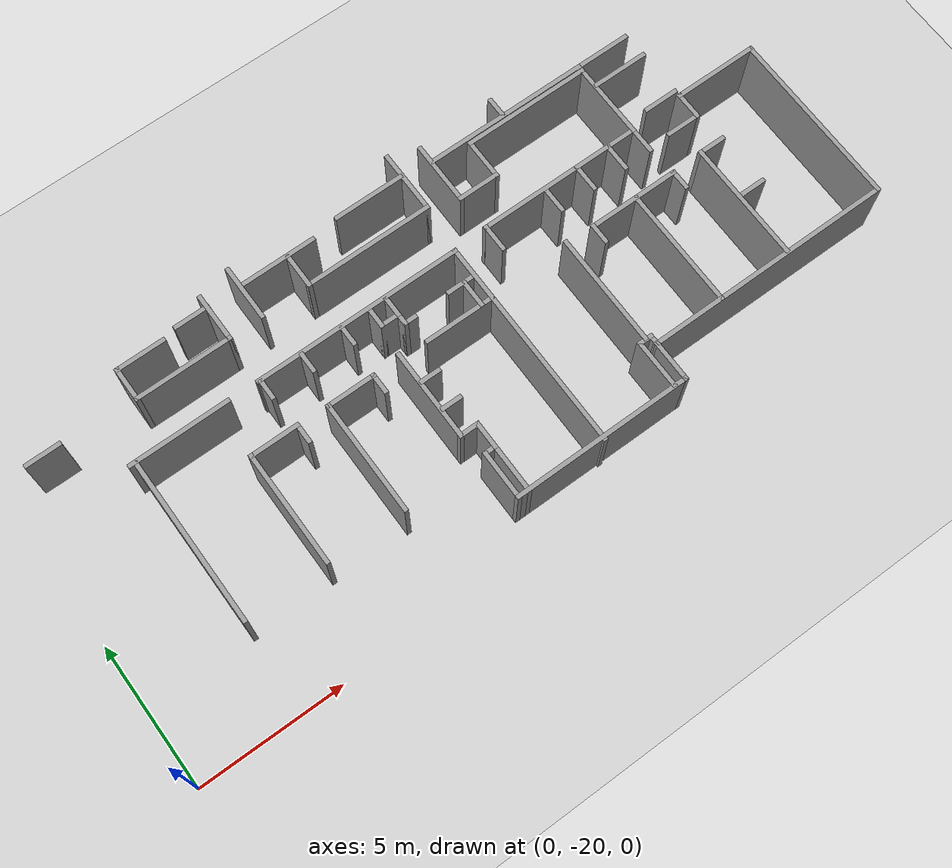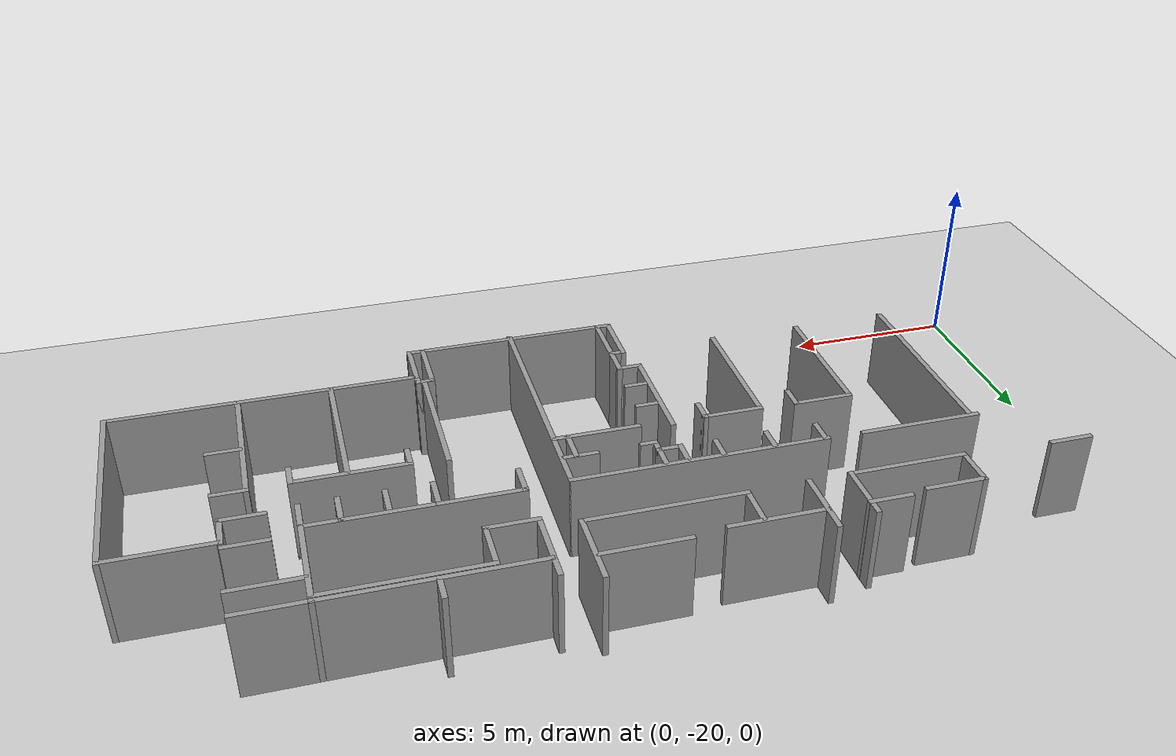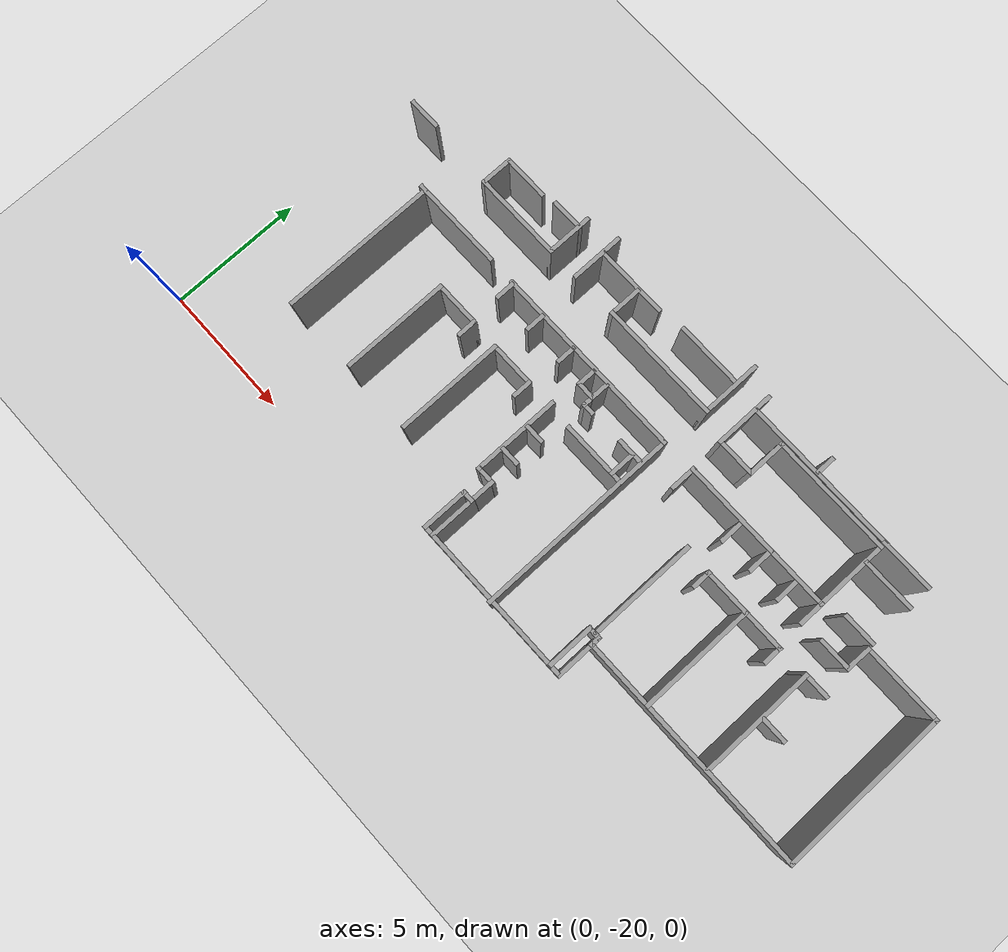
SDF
<sdf version="1.6">
 <world name="default">
  <model name="ground_plane">
   <static>1</static>
   <link name="link">
    <collision name="collision">
     <geometry><plane><normal>0 0 1</normal><size>100 100</size></plane></geometry>
     <surface>
      <contact><collide_bitmask>65535</collide_bitmask></contact>
      <friction><ode><mu>100</mu><mu2>50</mu2></ode></friction>
     </surface>
    </collision>
    <visual name="visual">
     <cast_shadows>0</cast_shadows>
     <geometry><plane><normal>0 0 1</normal><size>100 100</size></plane></geometry>
     <material>
      <script><uri>file://media/materials/scripts/gazebo.material</uri><name>Gazebo/Grey</name></script>
     </material>
    </visual>
   </link>
  </model>
  <model name="harnwell">
   <pose>0.907995 -0.1981 0 0 -0 0</pose>
   <link name="Wall_163">
    <collision name="Wall_163_Collision">
     <geometry><box><size>1.75 0.15 2.5</size></box></geometry>
     <pose>0 0 1.25 0 -0 0</pose>
    </collision>
    <visual name="Wall_163_Visual">
     <pose>0 0 1.25 0 -0 0</pose>
     <geometry><box><size>1.75 0.15 2.5</size></box></geometry>
     <material>
      <script><uri>file://media/materials/scripts/gazebo.material</uri><name>Gazebo/Grey</name></script>
      <ambient>1 1 1 1</ambient>
     </material>
     <meta><layer>0</layer></meta>
    </visual>
    <pose>4.64354 -8.7592 0 0 -0 3.14159</pose>
   </link>
   <link name="Wall_165">
    <collision name="Wall_165_Collision">
     <geometry><box><size>1.25 0.15 2.5</size></box></geometry>
     <pose>0 0 1.25 0 -0 0</pose>
    </collision>
    <visual name="Wall_165_Visual">
     <pose>0 0 1.25 0 -0 0</pose>
     <geometry><box><size>1.25 0.15 2.5</size></box></geometry>
     <material>
      <script><uri>file://media/materials/scripts/gazebo.material</uri><name>Gazebo/Grey</name></script>
      <ambient>1 1 1 1</ambient>
     </material>
     <meta><layer>0</layer></meta>
    </visual>
    <pose>3.84377 -9.30906 0 0 -0 -1.57037</pose>
   </link>
   <link name="Wall_166">
    <collision name="Wall_166_Collision">
     <geometry><box><size>3.3708 0.15 2.5</size></box></geometry>
     <pose>0 0 1.25 0 -0 0</pose>
    </collision>
    <visual name="Wall_166_Visual">
     <pose>0 0 1.25 0 -0 0</pose>
     <geometry><box><size>3.3708 0.15 2.5</size></box></geometry>
     <material>
      <script><uri>file://media/materials/scripts/gazebo.material</uri><name>Gazebo/Grey</name></script>
      <ambient>1 1 1 1</ambient>
     </material>
     <meta><layer>0</layer></meta>
    </visual>
    <pose>5.45451 -9.85893 0 0 -0 0</pose>
   </link>
   <link name="Wall_169">
    <collision name="Wall_169_Collision">
     <geometry><box><size>1.75 0.15 2.5</size></box></geometry>
     <pose>0 0 1.25 0 -0 0</pose>
    </collision>
    <visual name="Wall_169_Visual">
     <pose>0 0 1.25 0 -0 0</pose>
     <geometry><box><size>1.75 0.15 2.5</size></box></geometry>
     <material>
      <script><uri>file://media/materials/scripts/gazebo.material</uri><name>Gazebo/Grey</name></script>
      <ambient>1 1 1 1</ambient>
     </material>
     <meta><layer>0</layer></meta>
    </visual>
    <pose>7.06501 -9.05893 0 0 -0 1.5708</pose>
   </link>
   <link name="Wall_176">
    <collision name="Wall_176_Collision">
     <geometry><box><size>1.25 0.15 2.5</size></box></geometry>
     <pose>0 0 1.25 0 -0 0</pose>
    </collision>
    <visual name="Wall_176_Visual">
     <pose>0 0 1.25 0 -0 0</pose>
     <geometry><box><size>1.25 0.15 2.5</size></box></geometry>
     <material>
      <script><uri>file://media/materials/scripts/gazebo.material</uri><name>Gazebo/Grey</name></script>
      <ambient>1 1 1 1</ambient>
     </material>
     <meta><layer>0</layer></meta>
    </visual>
    <pose>6.52251 -8.63324 0 0 -0 0</pose>
   </link>
   <link name="Wall_221">
    <collision name="Wall_221_Collision">
     <geometry><box><size>3.01097 0.15 2.5</size></box></geometry>
     <pose>0 0 1.25 0 -0 0</pose>
    </collision>
    <visual name="Wall_221_Visual">
     <pose>0 0 1.25 0 -0 0</pose>
     <geometry><box><size>3.01097 0.15 2.5</size></box></geometry>
     <material>
      <script><uri>file://media/materials/scripts/gazebo.material</uri><name>Gazebo/Grey</name></script>
      <ambient>1 1 1 1</ambient>
     </material>
     <meta><layer>0</layer></meta>
    </visual>
    <pose>24.3195 -11.3298 0 0 -0 0.000107</pose>
   </link>
   <link name="Wall_223">
    <collision name="Wall_223_Collision">
     <geometry><box><size>6.25 0.15 2.5</size></box></geometry>
     <pose>0 0 1.25 0 -0 0</pose>
    </collision>
    <visual name="Wall_223_Visual">
     <pose>0 0 1.25 0 -0 0</pose>
     <geometry><box><size>6.25 0.15 2.5</size></box></geometry>
     <material>
      <script><uri>file://media/materials/scripts/gazebo.material</uri><name>Gazebo/Grey</name></script>
      <ambient>1 1 1 1</ambient>
     </material>
     <meta><layer>0</layer></meta>
    </visual>
    <pose>25.75 -14.3796 0 0 -0 -1.5708</pose>
   </link>
   <link name="Wall_224">
    <collision name="Wall_224_Collision">
     <geometry><box><size>8.75 0.15 2.5</size></box></geometry>
     <pose>0 0 1.25 0 -0 0</pose>
    </collision>
    <visual name="Wall_224_Visual">
     <pose>0 0 1.25 0 -0 0</pose>
     <geometry><box><size>8.75 0.15 2.5</size></box></geometry>
     <material>
      <script><uri>file://media/materials/scripts/gazebo.material</uri><name>Gazebo/Grey</name></script>
      <ambient>1 1 1 1</ambient>
     </material>
     <meta><layer>0</layer></meta>
    </visual>
    <pose>21.45 -17.4298 0 0 -0 -3.14156</pose>
   </link>
   <link name="Wall_225">
    <collision name="Wall_225_Collision">
     <geometry><box><size>1.5 0.15 2.5</size></box></geometry>
     <pose>0 0 1.25 0 -0 0</pose>
    </collision>
    <visual name="Wall_225_Visual">
     <pose>0 0 1.25 0 -0 0</pose>
     <geometry><box><size>1.5 0.15 2.5</size></box></geometry>
     <material>
      <script><uri>file://media/materials/scripts/gazebo.material</uri><name>Gazebo/Grey</name></script>
      <ambient>1 1 1 1</ambient>
     </material>
     <meta><layer>0</layer></meta>
    </visual>
    <pose>17.15 -18.1048 0 0 -0 -1.57082</pose>
   </link>
   <link name="Wall_226">
    <collision name="Wall_226_Collision">
     <geometry><box><size>6.25 0.15 2.5</size></box></geometry>
     <pose>0 0 1.25 0 -0 0</pose>
    </collision>
    <visual name="Wall_226_Visual">
     <pose>0 0 1.25 0 -0 0</pose>
     <geometry><box><size>6.25 0.15 2.5</size></box></geometry>
     <material>
      <script><uri>file://media/materials/scripts/gazebo.material</uri><name>Gazebo/Grey</name></script>
      <ambient>1 1 1 1</ambient>
     </material>
     <meta><layer>0</layer></meta>
    </visual>
    <pose>14.1 -18.7796 0 0 -0 3.14159</pose>
   </link>
   <link name="Wall_227">
    <collision name="Wall_227_Collision">
     <geometry><box><size>1.75 0.15 2.5</size></box></geometry>
     <pose>0 0 1.25 0 -0 0</pose>
    </collision>
    <visual name="Wall_227_Visual">
     <pose>0 0 1.25 0 -0 0</pose>
     <geometry><box><size>1.75 0.15 2.5</size></box></geometry>
     <material>
      <script><uri>file://media/materials/scripts/gazebo.material</uri><name>Gazebo/Grey</name></script>
      <ambient>1 1 1 1</ambient>
     </material>
     <meta><layer>0</layer></meta>
    </visual>
    <pose>11.05 -17.9796 0 0 -0 1.5708</pose>
   </link>
   <link name="Wall_252">
    <collision name="Wall_252_Collision">
     <geometry><box><size>1.25 0.15 2.5</size></box></geometry>
     <pose>0 0 1.25 0 -0 0</pose>
    </collision>
    <visual name="Wall_252_Visual">
     <pose>0 0 1.25 0 -0 0</pose>
     <geometry><box><size>1.25 0.15 2.5</size></box></geometry>
     <material>
      <script><uri>file://media/materials/scripts/gazebo.material</uri><name>Gazebo/Grey</name></script>
      <ambient>1 1 1 1</ambient>
     </material>
     <meta><layer>0</layer></meta>
    </visual>
    <pose>0.737992 -9.71494 0 0 -0 0</pose>
   </link>
   <link name="Wall_416">
    <collision name="Wall_416_Collision">
     <geometry><box><size>3.5 0.15 2.5</size></box></geometry>
     <pose>0 0 1.25 0 -0 0</pose>
    </collision>
    <visual name="Wall_416_Visual">
     <pose>0 0 1.25 0 -0 0</pose>
     <geometry><box><size>3.5 0.15 2.5</size></box></geometry>
     <material>
      <script><uri>file://media/materials/scripts/gazebo.material</uri><name>Gazebo/Grey</name></script>
      <ambient>1 1 1 1</ambient>
     </material>
     <meta><layer>0</layer></meta>
    </visual>
    <pose>4.27018 -11.4734 0 0 -0 0</pose>
   </link>
   <link name="Wall_419">
    <collision name="Wall_419_Collision">
     <geometry><box><size>5.78703 0.15 2.5</size></box></geometry>
     <pose>0 0 1.25 0 -0 0</pose>
    </collision>
    <visual name="Wall_419_Visual">
     <pose>0 0 1.25 0 -0 0</pose>
     <geometry><box><size>5.78703 0.15 2.5</size></box></geometry>
     <material>
      <script><uri>file://media/materials/scripts/gazebo.material</uri><name>Gazebo/Grey</name></script>
      <ambient>1 1 1 1</ambient>
     </material>
     <meta><layer>0</layer></meta>
    </visual>
    <pose>2.76701 -14.3394 0 0 -0 1.5708</pose>
   </link>
   <link name="Wall_462">
    <collision name="Wall_462_Collision">
     <geometry><box><size>7.25 0.15 2.5</size></box></geometry>
     <pose>0 0 1.25 0 -0 0</pose>
    </collision>
    <visual name="Wall_462_Visual">
     <pose>0 0 1.25 0 -0 0</pose>
     <geometry><box><size>7.25 0.15 2.5</size></box></geometry>
     <material>
      <script><uri>file://media/materials/scripts/gazebo.material</uri><name>Gazebo/Grey</name></script>
      <ambient>1 1 1 1</ambient>
     </material>
     <meta><layer>0</layer></meta>
    </visual>
    <pose>10.5509 -11.4972 0 0 -0 0</pose>
   </link>
   <link name="Wall_464">
    <collision name="Wall_464_Collision">
     <geometry><box><size>7.5 0.15 2.5</size></box></geometry>
     <pose>0 0 1.25 0 -0 0</pose>
    </collision>
    <visual name="Wall_464_Visual">
     <pose>0 0 1.25 0 -0 0</pose>
     <geometry><box><size>7.5 0.15 2.5</size></box></geometry>
     <material>
      <script><uri>file://media/materials/scripts/gazebo.material</uri><name>Gazebo/Grey</name></script>
      <ambient>1 1 1 1</ambient>
     </material>
     <meta><layer>0</layer></meta>
    </visual>
    <pose>14.1009 -15.1722 0 0 -0 -1.5708</pose>
   </link>
   <link name="Wall_466">
    <collision name="Wall_466_Collision">
     <geometry><box><size>0.5 0.15 2.5</size></box></geometry>
     <pose>0 0 1.25 0 -0 0</pose>
    </collision>
    <visual name="Wall_466_Visual">
     <pose>0 0 1.25 0 -0 0</pose>
     <geometry><box><size>0.5 0.15 2.5</size></box></geometry>
     <material>
      <script><uri>file://media/materials/scripts/gazebo.material</uri><name>Gazebo/Grey</name></script>
      <ambient>1 1 1 1</ambient>
     </material>
     <meta><layer>0</layer></meta>
    </visual>
    <pose>11.225 -17.1796 0 0 -0 0</pose>
   </link>
   <link name="Wall_468">
    <collision name="Wall_468_Collision">
     <geometry><box><size>1.75 0.15 2.5</size></box></geometry>
     <pose>0 0 1.25 0 -0 0</pose>
    </collision>
    <visual name="Wall_468_Visual">
     <pose>0 0 1.25 0 -0 0</pose>
     <geometry><box><size>1.75 0.15 2.5</size></box></geometry>
     <material>
      <script><uri>file://media/materials/scripts/gazebo.material</uri><name>Gazebo/Grey</name></script>
      <ambient>1 1 1 1</ambient>
     </material>
     <meta><layer>0</layer></meta>
    </visual>
    <pose>11.4 -17.9796 0 0 -0 -1.5708</pose>
   </link>
   <link name="Wall_470">
    <collision name="Wall_470_Collision">
     <geometry><box><size>1 0.15 2.5</size></box></geometry>
     <pose>0 0 1.25 0 -0 0</pose>
    </collision>
    <visual name="Wall_470_Visual">
     <pose>0 0 1.25 0 -0 0</pose>
     <geometry><box><size>1 0.15 2.5</size></box></geometry>
     <material>
      <script><uri>file://media/materials/scripts/gazebo.material</uri><name>Gazebo/Grey</name></script>
      <ambient>1 1 1 1</ambient>
     </material>
     <meta><layer>0</layer></meta>
    </visual>
    <pose>11.4 -16.7546 0 0 -0 1.5708</pose>
   </link>
   <link name="Wall_471">
    <collision name="Wall_471_Collision">
     <geometry><box><size>0.75 0.15 2.5</size></box></geometry>
     <pose>0 0 1.25 0 -0 0</pose>
    </collision>
    <visual name="Wall_471_Visual">
     <pose>0 0 1.25 0 -0 0</pose>
     <geometry><box><size>0.75 0.15 2.5</size></box></geometry>
     <material>
      <script><uri>file://media/materials/scripts/gazebo.material</uri><name>Gazebo/Grey</name></script>
      <ambient>1 1 1 1</ambient>
     </material>
     <meta><layer>0</layer></meta>
    </visual>
    <pose>11.1 -16.3296 0 0 -0 3.14159</pose>
   </link>
   <link name="Wall_473">
    <collision name="Wall_473_Collision">
     <geometry><box><size>3.25 0.15 2.5</size></box></geometry>
     <pose>0 0 1.25 0 -0 0</pose>
    </collision>
    <visual name="Wall_473_Visual">
     <pose>0 0 1.25 0 -0 0</pose>
     <geometry><box><size>3.25 0.15 2.5</size></box></geometry>
     <material>
      <script><uri>file://media/materials/scripts/gazebo.material</uri><name>Gazebo/Grey</name></script>
      <ambient>1 1 1 1</ambient>
     </material>
     <meta><layer>0</layer></meta>
    </visual>
    <pose>10.8 -14.7796 0 0 -0 1.5708</pose>
   </link>
   <link name="Wall_475">
    <collision name="Wall_475_Collision">
     <geometry><box><size>2.5 0.15 2.5</size></box></geometry>
     <pose>0 0 1.25 0 -0 0</pose>
    </collision>
    <visual name="Wall_475_Visual">
     <pose>0 0 1.25 0 -0 0</pose>
     <geometry><box><size>2.5 0.15 2.5</size></box></geometry>
     <material>
      <script><uri>file://media/materials/scripts/gazebo.material</uri><name>Gazebo/Grey</name></script>
      <ambient>1 1 1 1</ambient>
     </material>
     <meta><layer>0</layer></meta>
    </visual>
    <pose>12.9077 -13.3825 0 0 -0 0</pose>
   </link>
   <link name="Wall_477">
    <collision name="Wall_477_Collision">
     <geometry><box><size>0.75 0.15 2.5</size></box></geometry>
     <pose>0 0 1.25 0 -0 0</pose>
    </collision>
    <visual name="Wall_477_Visual">
     <pose>0 0 1.25 0 -0 0</pose>
     <geometry><box><size>0.75 0.15 2.5</size></box></geometry>
     <material>
      <script><uri>file://media/materials/scripts/gazebo.material</uri><name>Gazebo/Grey</name></script>
      <ambient>1 1 1 1</ambient>
     </material>
     <meta><layer>0</layer></meta>
    </visual>
    <pose>11.1515 -14.318 0 0 -0 0</pose>
   </link>
   <link name="Wall_479">
    <collision name="Wall_479_Collision">
     <geometry><box><size>0.75 0.15 2.5</size></box></geometry>
     <pose>0 0 1.25 0 -0 0</pose>
    </collision>
    <visual name="Wall_479_Visual">
     <pose>0 0 1.25 0 -0 0</pose>
     <geometry><box><size>0.75 0.15 2.5</size></box></geometry>
     <material>
      <script><uri>file://media/materials/scripts/gazebo.material</uri><name>Gazebo/Grey</name></script>
      <ambient>1 1 1 1</ambient>
     </material>
     <meta><layer>0</layer></meta>
    </visual>
    <pose>11.1636 -15.3621 0 0 -0 0</pose>
   </link>
   <link name="Wall_481">
    <collision name="Wall_481_Collision">
     <geometry><box><size>0.747561 0.15 2.5</size></box></geometry>
     <pose>0 0 1.25 0 -0 0</pose>
    </collision>
    <visual name="Wall_481_Visual">
     <pose>0 0 1.25 0 -0 0</pose>
     <geometry><box><size>0.747561 0.15 2.5</size></box></geometry>
     <material>
      <script><uri>file://media/materials/scripts/gazebo.material</uri><name>Gazebo/Grey</name></script>
      <ambient>1 1 1 1</ambient>
     </material>
     <meta><layer>0</layer></meta>
    </visual>
    <pose>7.05899 -11.85 0 0 -0 1.5708</pose>
   </link>
   <link name="Wall_485">
    <collision name="Wall_485_Collision">
     <geometry><box><size>0.75 0.15 2.5</size></box></geometry>
     <pose>0 0 1.25 0 -0 0</pose>
    </collision>
    <visual name="Wall_485_Visual">
     <pose>0 0 1.25 0 -0 0</pose>
     <geometry><box><size>0.75 0.15 2.5</size></box></geometry>
     <material>
      <script><uri>file://media/materials/scripts/gazebo.material</uri><name>Gazebo/Grey</name></script>
      <ambient>1 1 1 1</ambient>
     </material>
     <meta><layer>0</layer></meta>
    </visual>
    <pose>8.49576 -11.8554 0 0 -0 1.5708</pose>
   </link>
   <link name="Wall_487">
    <collision name="Wall_487_Collision">
     <geometry><box><size>0.75 0.15 2.5</size></box></geometry>
     <pose>0 0 1.25 0 -0 0</pose>
    </collision>
    <visual name="Wall_487_Visual">
     <pose>0 0 1.25 0 -0 0</pose>
     <geometry><box><size>0.75 0.15 2.5</size></box></geometry>
     <material>
      <script><uri>file://media/materials/scripts/gazebo.material</uri><name>Gazebo/Grey</name></script>
      <ambient>1 1 1 1</ambient>
     </material>
     <meta><layer>0</layer></meta>
    </visual>
    <pose>9.93946 -11.8554 0 0 -0 1.5708</pose>
   </link>
   <link name="Wall_489">
    <collision name="Wall_489_Collision">
     <geometry><box><size>0.75 0.15 2.5</size></box></geometry>
     <pose>0 0 1.25 0 -0 0</pose>
    </collision>
    <visual name="Wall_489_Visual">
     <pose>0 0 1.25 0 -0 0</pose>
     <geometry><box><size>0.75 0.15 2.5</size></box></geometry>
     <material>
      <script><uri>file://media/materials/scripts/gazebo.material</uri><name>Gazebo/Grey</name></script>
      <ambient>1 1 1 1</ambient>
     </material>
     <meta><layer>0</layer></meta>
    </visual>
    <pose>10.9251 -11.8793 0 0 -0 -1.5708</pose>
   </link>
   <link name="Wall_490">
    <collision name="Wall_490_Collision">
     <geometry><box><size>0.75 0.15 2.5</size></box></geometry>
     <pose>0 0 1.25 0 -0 0</pose>
    </collision>
    <visual name="Wall_490_Visual">
     <pose>0 0 1.25 0 -0 0</pose>
     <geometry><box><size>0.75 0.15 2.5</size></box></geometry>
     <material>
      <script><uri>file://media/materials/scripts/gazebo.material</uri><name>Gazebo/Grey</name></script>
      <ambient>1 1 1 1</ambient>
     </material>
     <meta><layer>0</layer></meta>
    </visual>
    <pose>11.2251 -12.1793 0 0 -0 0</pose>
   </link>
   <link name="Wall_491">
    <collision name="Wall_491_Collision">
     <geometry><box><size>0.75 0.15 2.5</size></box></geometry>
     <pose>0 0 1.25 0 -0 0</pose>
    </collision>
    <visual name="Wall_491_Visual">
     <pose>0 0 1.25 0 -0 0</pose>
     <geometry><box><size>0.75 0.15 2.5</size></box></geometry>
     <material>
      <script><uri>file://media/materials/scripts/gazebo.material</uri><name>Gazebo/Grey</name></script>
      <ambient>1 1 1 1</ambient>
     </material>
     <meta><layer>0</layer></meta>
    </visual>
    <pose>11.5251 -11.8793 0 0 -0 1.5708</pose>
   </link>
   <link name="Wall_493">
    <collision name="Wall_493_Collision">
     <geometry><box><size>0.5 0.15 2.5</size></box></geometry>
     <pose>0 0 1.25 0 -0 0</pose>
    </collision>
    <visual name="Wall_493_Visual">
     <pose>0 0 1.25 0 -0 0</pose>
     <geometry><box><size>0.5 0.15 2.5</size></box></geometry>
     <material>
      <script><uri>file://media/materials/scripts/gazebo.material</uri><name>Gazebo/Grey</name></script>
      <ambient>1 1 1 1</ambient>
     </material>
     <meta><layer>0</layer></meta>
    </visual>
    <pose>11.5251 -12.3543 0 0 -0 -1.5708</pose>
   </link>
   <link name="Wall_494">
    <collision name="Wall_494_Collision">
     <geometry><box><size>0.5 0.15 2.5</size></box></geometry>
     <pose>0 0 1.25 0 -0 0</pose>
    </collision>
    <visual name="Wall_494_Visual">
     <pose>0 0 1.25 0 -0 0</pose>
     <geometry><box><size>0.5 0.15 2.5</size></box></geometry>
     <material>
      <script><uri>file://media/materials/scripts/gazebo.material</uri><name>Gazebo/Grey</name></script>
      <ambient>1 1 1 1</ambient>
     </material>
     <meta><layer>0</layer></meta>
    </visual>
    <pose>11.7001 -12.5293 0 0 -0 0</pose>
   </link>
   <link name="Wall_496">
    <collision name="Wall_496_Collision">
     <geometry><box><size>1 0.15 2.5</size></box></geometry>
     <pose>0 0 1.25 0 -0 0</pose>
    </collision>
    <visual name="Wall_496_Visual">
     <pose>0 0 1.25 0 -0 0</pose>
     <geometry><box><size>1 0.15 2.5</size></box></geometry>
     <material>
      <script><uri>file://media/materials/scripts/gazebo.material</uri><name>Gazebo/Grey</name></script>
      <ambient>1 1 1 1</ambient>
     </material>
     <meta><layer>0</layer></meta>
    </visual>
    <pose>13.585 -12.4885 0 0 -0 0</pose>
   </link>
   <link name="Wall_499">
    <collision name="Wall_499_Collision">
     <geometry><box><size>1 0.15 2.5</size></box></geometry>
     <pose>0 0 1.25 0 -0 0</pose>
    </collision>
    <visual name="Wall_499_Visual">
     <pose>0 0 1.25 0 -0 0</pose>
     <geometry><box><size>1 0.15 2.5</size></box></geometry>
     <material>
      <script><uri>file://media/materials/scripts/gazebo.material</uri><name>Gazebo/Grey</name></script>
      <ambient>1 1 1 1</ambient>
     </material>
     <meta><layer>0</layer></meta>
    </visual>
    <pose>13.7084 -12.9482 0 0 -0 -1.5708</pose>
   </link>
   <link name="Wall_501">
    <collision name="Wall_501_Collision">
     <geometry><box><size>4 0.15 2.5</size></box></geometry>
     <pose>0 0 1.25 0 -0 0</pose>
    </collision>
    <visual name="Wall_501_Visual">
     <pose>0 0 1.25 0 -0 0</pose>
     <geometry><box><size>4 0.15 2.5</size></box></geometry>
     <material>
      <script><uri>file://media/materials/scripts/gazebo.material</uri><name>Gazebo/Grey</name></script>
      <ambient>1 1 1 1</ambient>
     </material>
     <meta><layer>0</layer></meta>
    </visual>
    <pose>5.56334 -15.2087 0 0 -0 1.5708</pose>
   </link>
   <link name="Wall_502">
    <collision name="Wall_502_Collision">
     <geometry><box><size>1.75 0.15 2.5</size></box></geometry>
     <pose>0 0 1.25 0 -0 0</pose>
    </collision>
    <visual name="Wall_502_Visual">
     <pose>0 0 1.25 0 -0 0</pose>
     <geometry><box><size>1.75 0.15 2.5</size></box></geometry>
     <material>
      <script><uri>file://media/materials/scripts/gazebo.material</uri><name>Gazebo/Grey</name></script>
      <ambient>1 1 1 1</ambient>
     </material>
     <meta><layer>0</layer></meta>
    </visual>
    <pose>6.36334 -13.2837 0 0 -0 0</pose>
   </link>
   <link name="Wall_503">
    <collision name="Wall_503_Collision">
     <geometry><box><size>0.75 0.15 2.5</size></box></geometry>
     <pose>0 0 1.25 0 -0 0</pose>
    </collision>
    <visual name="Wall_503_Visual">
     <pose>0 0 1.25 0 -0 0</pose>
     <geometry><box><size>0.75 0.15 2.5</size></box></geometry>
     <material>
      <script><uri>file://media/materials/scripts/gazebo.material</uri><name>Gazebo/Grey</name></script>
      <ambient>1 1 1 1</ambient>
     </material>
     <meta><layer>0</layer></meta>
    </visual>
    <pose>7.16334 -13.5837 0 0 -0 -1.5708</pose>
   </link>
   <link name="Wall_505">
    <collision name="Wall_505_Collision">
     <geometry><box><size>4 0.15 2.5</size></box></geometry>
     <pose>0 0 1.25 0 -0 0</pose>
    </collision>
    <visual name="Wall_505_Visual">
     <pose>0 0 1.25 0 -0 0</pose>
     <geometry><box><size>4 0.15 2.5</size></box></geometry>
     <material>
      <script><uri>file://media/materials/scripts/gazebo.material</uri><name>Gazebo/Grey</name></script>
      <ambient>1 1 1 1</ambient>
     </material>
     <meta><layer>0</layer></meta>
    </visual>
    <pose>8.22199 -15.2549 0 0 -0 1.5708</pose>
   </link>
   <link name="Wall_509">
    <collision name="Wall_509_Collision">
     <geometry><box><size>1.75 0.15 2.5</size></box></geometry>
     <pose>0 0 1.25 0 -0 0</pose>
    </collision>
    <visual name="Wall_509_Visual">
     <pose>0 0 1.25 0 -0 0</pose>
     <geometry><box><size>1.75 0.15 2.5</size></box></geometry>
     <material>
      <script><uri>file://media/materials/scripts/gazebo.material</uri><name>Gazebo/Grey</name></script>
      <ambient>1 1 1 1</ambient>
     </material>
     <meta><layer>0</layer></meta>
    </visual>
    <pose>9.02199 -13.3299 0 0 -0 0</pose>
   </link>
   <link name="Wall_510">
    <collision name="Wall_510_Collision">
     <geometry><box><size>0.75 0.15 2.5</size></box></geometry>
     <pose>0 0 1.25 0 -0 0</pose>
    </collision>
    <visual name="Wall_510_Visual">
     <pose>0 0 1.25 0 -0 0</pose>
     <geometry><box><size>0.75 0.15 2.5</size></box></geometry>
     <material>
      <script><uri>file://media/materials/scripts/gazebo.material</uri><name>Gazebo/Grey</name></script>
      <ambient>1 1 1 1</ambient>
     </material>
     <meta><layer>0</layer></meta>
    </visual>
    <pose>9.82199 -13.6299 0 0 -0 -1.5708</pose>
   </link>
   <link name="Wall_512">
    <collision name="Wall_512_Collision">
     <geometry><box><size>2 0.15 2.5</size></box></geometry>
     <pose>0 0 1.25 0 -0 0</pose>
    </collision>
    <visual name="Wall_512_Visual">
     <pose>0 0 1.25 0 -0 0</pose>
     <geometry><box><size>2 0.15 2.5</size></box></geometry>
     <material>
      <script><uri>file://media/materials/scripts/gazebo.material</uri><name>Gazebo/Grey</name></script>
      <ambient>1 1 1 1</ambient>
     </material>
     <meta><layer>0</layer></meta>
    </visual>
    <pose>8.23235 -8.91769 0 0 -0 1.5708</pose>
   </link>
   <link name="Wall_514">
    <collision name="Wall_514_Collision">
     <geometry><box><size>2.75047 0.15 2.5</size></box></geometry>
     <pose>0 0 1.25 0 -0 0</pose>
    </collision>
    <visual name="Wall_514_Visual">
     <pose>0 0 1.25 0 -0 0</pose>
     <geometry><box><size>2.75047 0.15 2.5</size></box></geometry>
     <material>
      <script><uri>file://media/materials/scripts/gazebo.material</uri><name>Gazebo/Grey</name></script>
      <ambient>1 1 1 1</ambient>
     </material>
     <meta><layer>0</layer></meta>
    </visual>
    <pose>9.55401 -8.65393 0 0 -0 0</pose>
   </link>
   <link name="Wall_519">
    <collision name="Wall_519_Collision">
     <geometry><box><size>1.26067 0.15 2.5</size></box></geometry>
     <pose>0 0 1.25 0 -0 0</pose>
    </collision>
    <visual name="Wall_519_Visual">
     <pose>0 0 1.25 0 -0 0</pose>
     <geometry><box><size>1.26067 0.15 2.5</size></box></geometry>
     <material>
      <script><uri>file://media/materials/scripts/gazebo.material</uri><name>Gazebo/Grey</name></script>
      <ambient>1 1 1 1</ambient>
     </material>
     <meta><layer>0</layer></meta>
    </visual>
    <pose>9.92728 -9.26312 0 0 -0 -1.5708</pose>
   </link>
   <link name="Wall_520">
    <collision name="Wall_520_Collision">
     <geometry><box><size>4.5 0.15 2.5</size></box></geometry>
     <pose>0 0 1.25 0 -0 0</pose>
    </collision>
    <visual name="Wall_520_Visual">
     <pose>0 0 1.25 0 -0 0</pose>
     <geometry><box><size>4.5 0.15 2.5</size></box></geometry>
     <material>
      <script><uri>file://media/materials/scripts/gazebo.material</uri><name>Gazebo/Grey</name></script>
      <ambient>1 1 1 1</ambient>
     </material>
     <meta><layer>0</layer></meta>
    </visual>
    <pose>12.097 -9.81842 0 0 -0 0</pose>
   </link>
   <link name="Wall_523">
    <collision name="Wall_523_Collision">
     <geometry><box><size>2.25 0.15 2.5</size></box></geometry>
     <pose>0 0 1.25 0 -0 0</pose>
    </collision>
    <visual name="Wall_523_Visual">
     <pose>0 0 1.25 0 -0 0</pose>
     <geometry><box><size>2.25 0.15 2.5</size></box></geometry>
     <material>
      <script><uri>file://media/materials/scripts/gazebo.material</uri><name>Gazebo/Grey</name></script>
      <ambient>1 1 1 1</ambient>
     </material>
     <meta><layer>0</layer></meta>
    </visual>
    <pose>14.272 -8.76842 0 0 -0 1.5708</pose>
   </link>
   <link name="Wall_528">
    <collision name="Wall_528_Collision">
     <geometry><box><size>2.5 0.15 2.5</size></box></geometry>
     <pose>0 0 1.25 0 -0 0</pose>
    </collision>
    <visual name="Wall_528_Visual">
     <pose>0 0 1.25 0 -0 0</pose>
     <geometry><box><size>2.5 0.15 2.5</size></box></geometry>
     <material>
      <script><uri>file://media/materials/scripts/gazebo.material</uri><name>Gazebo/Grey</name></script>
      <ambient>1 1 1 1</ambient>
     </material>
     <meta><layer>0</layer></meta>
    </visual>
    <pose>13.027 -8.49693 0 0 -0 0</pose>
   </link>
   <link name="Wall_530">
    <collision name="Wall_530_Collision">
     <geometry><box><size>2.25 0.15 2.5</size></box></geometry>
     <pose>0 0 1.25 0 -0 0</pose>
    </collision>
    <visual name="Wall_530_Visual">
     <pose>0 0 1.25 0 -0 0</pose>
     <geometry><box><size>2.25 0.15 2.5</size></box></geometry>
     <material>
      <script><uri>file://media/materials/scripts/gazebo.material</uri><name>Gazebo/Grey</name></script>
      <ambient>1 1 1 1</ambient>
     </material>
     <meta><layer>0</layer></meta>
    </visual>
    <pose>15.269 -9.12503 0 0 -0 -1.5708</pose>
   </link>
   <link name="Wall_532">
    <collision name="Wall_532_Collision">
     <geometry><box><size>1.5 0.15 2.5</size></box></geometry>
     <pose>0 0 1.25 0 -0 0</pose>
    </collision>
    <visual name="Wall_532_Visual">
     <pose>0 0 1.25 0 -0 0</pose>
     <geometry><box><size>1.5 0.15 2.5</size></box></geometry>
     <material>
      <script><uri>file://media/materials/scripts/gazebo.material</uri><name>Gazebo/Grey</name></script>
      <ambient>1 1 1 1</ambient>
     </material>
     <meta><layer>0</layer></meta>
    </visual>
    <pose>15.944 -10.175 0 0 -0 0</pose>
   </link>
   <link name="Wall_533">
    <collision name="Wall_533_Collision">
     <geometry><box><size>1.5 0.15 2.5</size></box></geometry>
     <pose>0 0 1.25 0 -0 0</pose>
    </collision>
    <visual name="Wall_533_Visual">
     <pose>0 0 1.25 0 -0 0</pose>
     <geometry><box><size>1.5 0.15 2.5</size></box></geometry>
     <material>
      <script><uri>file://media/materials/scripts/gazebo.material</uri><name>Gazebo/Grey</name></script>
      <ambient>1 1 1 1</ambient>
     </material>
     <meta><layer>0</layer></meta>
    </visual>
    <pose>16.619 -9.50003 0 0 -0 1.5708</pose>
   </link>
   <link name="Wall_534">
    <collision name="Wall_534_Collision">
     <geometry><box><size>4.5 0.15 2.5</size></box></geometry>
     <pose>0 0 1.25 0 -0 0</pose>
    </collision>
    <visual name="Wall_534_Visual">
     <pose>0 0 1.25 0 -0 0</pose>
     <geometry><box><size>4.5 0.15 2.5</size></box></geometry>
     <material>
      <script><uri>file://media/materials/scripts/gazebo.material</uri><name>Gazebo/Grey</name></script>
      <ambient>1 1 1 1</ambient>
     </material>
     <meta><layer>0</layer></meta>
    </visual>
    <pose>18.794 -8.82498 0 0 -0 2.3e-05</pose>
   </link>
   <link name="Wall_535">
    <collision name="Wall_535_Collision">
     <geometry><box><size>2.75 0.15 2.5</size></box></geometry>
     <pose>0 0 1.25 0 -0 0</pose>
    </collision>
    <visual name="Wall_535_Visual">
     <pose>0 0 1.25 0 -0 0</pose>
     <geometry><box><size>2.75 0.15 2.5</size></box></geometry>
     <material>
      <script><uri>file://media/materials/scripts/gazebo.material</uri><name>Gazebo/Grey</name></script>
      <ambient>1 1 1 1</ambient>
     </material>
     <meta><layer>0</layer></meta>
    </visual>
    <pose>20.969 -10.125 0 0 -0 -1.5708</pose>
   </link>
   <link name="Wall_536">
    <collision name="Wall_536_Collision">
     <geometry><box><size>5.80525 0.15 2.5</size></box></geometry>
     <pose>0 0 1.25 0 -0 0</pose>
    </collision>
    <visual name="Wall_536_Visual">
     <pose>0 0 1.25 0 -0 0</pose>
     <geometry><box><size>5.80525 0.15 2.5</size></box></geometry>
     <material>
      <script><uri>file://media/materials/scripts/gazebo.material</uri><name>Gazebo/Grey</name></script>
      <ambient>1 1 1 1</ambient>
     </material>
     <meta><layer>0</layer></meta>
    </visual>
    <pose>18.1414 -11.425 0 0 -0 3.14159</pose>
   </link>
   <link name="Wall_538">
    <collision name="Wall_538_Collision">
     <geometry><box><size>1 0.15 2.5</size></box></geometry>
     <pose>0 0 1.25 0 -0 0</pose>
    </collision>
    <visual name="Wall_538_Visual">
     <pose>0 0 1.25 0 -0 0</pose>
     <geometry><box><size>1 0.15 2.5</size></box></geometry>
     <material>
      <script><uri>file://media/materials/scripts/gazebo.material</uri><name>Gazebo/Grey</name></script>
      <ambient>1 1 1 1</ambient>
     </material>
     <meta><layer>0</layer></meta>
    </visual>
    <pose>15.3199 -11.85 0 0 -0 -1.5708</pose>
   </link>
   <link name="Wall_540">
    <collision name="Wall_540_Collision">
     <geometry><box><size>5.803 0.15 2.5</size></box></geometry>
     <pose>0 0 1.25 0 -0 0</pose>
    </collision>
    <visual name="Wall_540_Visual">
     <pose>0 0 1.25 0 -0 0</pose>
     <geometry><box><size>5.803 0.15 2.5</size></box></geometry>
     <material>
      <script><uri>file://media/materials/scripts/gazebo.material</uri><name>Gazebo/Grey</name></script>
      <ambient>1 1 1 1</ambient>
     </material>
     <meta><layer>0</layer></meta>
    </visual>
    <pose>18.1425 -8.65393 0 0 -0 0</pose>
   </link>
   <link name="Wall_542">
    <collision name="Wall_542_Collision">
     <geometry><box><size>0.321596 0.15 2.5</size></box></geometry>
     <pose>0 0 1.25 0 -0 0</pose>
    </collision>
    <visual name="Wall_542_Visual">
     <pose>0 0 1.25 0 -0 0</pose>
     <geometry><box><size>0.321596 0.15 2.5</size></box></geometry>
     <material>
      <script><uri>file://media/materials/scripts/gazebo.material</uri><name>Gazebo/Grey</name></script>
      <ambient>1 1 1 1</ambient>
     </material>
     <meta><layer>0</layer></meta>
    </visual>
    <pose>20.969 -8.73943 0 0 -0 -1.5708</pose>
   </link>
   <link name="Wall_546">
    <collision name="Wall_546_Collision">
     <geometry><box><size>0.75 0.15 2.5</size></box></geometry>
     <pose>0 0 1.25 0 -0 0</pose>
    </collision>
    <visual name="Wall_546_Visual">
     <pose>0 0 1.25 0 -0 0</pose>
     <geometry><box><size>0.75 0.15 2.5</size></box></geometry>
     <material>
      <script><uri>file://media/materials/scripts/gazebo.material</uri><name>Gazebo/Grey</name></script>
      <ambient>1 1 1 1</ambient>
     </material>
     <meta><layer>0</layer></meta>
    </visual>
    <pose>18.0172 -8.29755 0 0 -0 -1.5708</pose>
   </link>
   <link name="Wall_557">
    <collision name="Wall_557_Collision">
     <geometry><box><size>2 0.15 2.5</size></box></geometry>
     <pose>0 0 1.25 0 -0 0</pose>
    </collision>
    <visual name="Wall_557_Visual">
     <pose>0 0 1.25 0 -0 0</pose>
     <geometry><box><size>2 0.15 2.5</size></box></geometry>
     <material>
      <script><uri>file://media/materials/scripts/gazebo.material</uri><name>Gazebo/Grey</name></script>
      <ambient>1 1 1 1</ambient>
     </material>
     <meta><layer>0</layer></meta>
    </visual>
    <pose>21.894 -8.65393 0 0 -0 0</pose>
   </link>
   <link name="Wall_559">
    <collision name="Wall_559_Collision">
     <geometry><box><size>2 0.15 2.5</size></box></geometry>
     <pose>0 0 1.25 0 -0 0</pose>
    </collision>
    <visual name="Wall_559_Visual">
     <pose>0 0 1.25 0 -0 0</pose>
     <geometry><box><size>2 0.15 2.5</size></box></geometry>
     <material>
      <script><uri>file://media/materials/scripts/gazebo.material</uri><name>Gazebo/Grey</name></script>
      <ambient>1 1 1 1</ambient>
     </material>
     <meta><layer>0</layer></meta>
    </visual>
    <pose>21.948 -9.5028 0 0 -0 0</pose>
   </link>
   <link name="Wall_561">
    <collision name="Wall_561_Collision">
     <geometry><box><size>1 0.15 2.5</size></box></geometry>
     <pose>0 0 1.25 0 -0 0</pose>
    </collision>
    <visual name="Wall_561_Visual">
     <pose>0 0 1.25 0 -0 0</pose>
     <geometry><box><size>1 0.15 2.5</size></box></geometry>
     <material>
      <script><uri>file://media/materials/scripts/gazebo.material</uri><name>Gazebo/Grey</name></script>
      <ambient>1 1 1 1</ambient>
     </material>
     <meta><layer>0</layer></meta>
    </visual>
    <pose>20.969 -11.85 0 0 -0 -1.5708</pose>
   </link>
   <link name="Wall_563">
    <collision name="Wall_563_Collision">
     <geometry><box><size>1.25 0.15 2.5</size></box></geometry>
     <pose>0 0 1.25 0 -0 0</pose>
    </collision>
    <visual name="Wall_563_Visual">
     <pose>0 0 1.25 0 -0 0</pose>
     <geometry><box><size>1.25 0.15 2.5</size></box></geometry>
     <material>
      <script><uri>file://media/materials/scripts/gazebo.material</uri><name>Gazebo/Grey</name></script>
      <ambient>1 1 1 1</ambient>
     </material>
     <meta><layer>0</layer></meta>
    </visual>
    <pose>22.3388 -12.1979 0 0 -0 -1.4e-05</pose>
   </link>
   <link name="Wall_564">
    <collision name="Wall_564_Collision">
     <geometry><box><size>1.01836 0.15 2.5</size></box></geometry>
     <pose>0 0 1.25 0 -0 0</pose>
    </collision>
    <visual name="Wall_564_Visual">
     <pose>0 0 1.25 0 -0 0</pose>
     <geometry><box><size>1.01836 0.15 2.5</size></box></geometry>
     <material>
      <script><uri>file://media/materials/scripts/gazebo.material</uri><name>Gazebo/Grey</name></script>
      <ambient>1 1 1 1</ambient>
     </material>
     <meta><layer>0</layer></meta>
    </visual>
    <pose>22.889 -11.7639 0 0 -0 1.5708</pose>
   </link>
   <link name="Wall_566">
    <collision name="Wall_566_Collision">
     <geometry><box><size>1.25 0.15 2.5</size></box></geometry>
     <pose>0 0 1.25 0 -0 0</pose>
    </collision>
    <visual name="Wall_566_Visual">
     <pose>0 0 1.25 0 -0 0</pose>
     <geometry><box><size>1.25 0.15 2.5</size></box></geometry>
     <material>
      <script><uri>file://media/materials/scripts/gazebo.material</uri><name>Gazebo/Grey</name></script>
      <ambient>1 1 1 1</ambient>
     </material>
     <meta><layer>0</layer></meta>
    </visual>
    <pose>22.3066 -11.1196 0 0 -0 0</pose>
   </link>
   <link name="Wall_568">
    <collision name="Wall_568_Collision">
     <geometry><box><size>1 0.15 2.5</size></box></geometry>
     <pose>0 0 1.25 0 -0 0</pose>
    </collision>
    <visual name="Wall_568_Visual">
     <pose>0 0 1.25 0 -0 0</pose>
     <geometry><box><size>1 0.15 2.5</size></box></geometry>
     <material>
      <script><uri>file://media/materials/scripts/gazebo.material</uri><name>Gazebo/Grey</name></script>
      <ambient>1 1 1 1</ambient>
     </material>
     <meta><layer>0</layer></meta>
    </visual>
    <pose>17.54 -11.8683 0 0 -0 1.5708</pose>
   </link>
   <link name="Wall_570">
    <collision name="Wall_570_Collision">
     <geometry><box><size>1 0.15 2.5</size></box></geometry>
     <pose>0 0 1.25 0 -0 0</pose>
    </collision>
    <visual name="Wall_570_Visual">
     <pose>0 0 1.25 0 -0 0</pose>
     <geometry><box><size>1 0.15 2.5</size></box></geometry>
     <material>
      <script><uri>file://media/materials/scripts/gazebo.material</uri><name>Gazebo/Grey</name></script>
      <ambient>1 1 1 1</ambient>
     </material>
     <meta><layer>0</layer></meta>
    </visual>
    <pose>18.7752 -11.8683 0 0 -0 1.5708</pose>
   </link>
   <link name="Wall_572">
    <collision name="Wall_572_Collision">
     <geometry><box><size>1 0.15 2.5</size></box></geometry>
     <pose>0 0 1.25 0 -0 0</pose>
    </collision>
    <visual name="Wall_572_Visual">
     <pose>0 0 1.25 0 -0 0</pose>
     <geometry><box><size>1 0.15 2.5</size></box></geometry>
     <material>
      <script><uri>file://media/materials/scripts/gazebo.material</uri><name>Gazebo/Grey</name></script>
      <ambient>1 1 1 1</ambient>
     </material>
     <meta><layer>0</layer></meta>
    </visual>
    <pose>19.978 -11.8844 0 0 -0 1.5708</pose>
   </link>
   <link name="Wall_574">
    <collision name="Wall_574_Collision">
     <geometry><box><size>1.75 0.15 2.5</size></box></geometry>
     <pose>0 0 1.25 0 -0 0</pose>
    </collision>
    <visual name="Wall_574_Visual">
     <pose>0 0 1.25 0 -0 0</pose>
     <geometry><box><size>1.75 0.15 2.5</size></box></geometry>
     <material>
      <script><uri>file://media/materials/scripts/gazebo.material</uri><name>Gazebo/Grey</name></script>
      <ambient>1 1 1 1</ambient>
     </material>
     <meta><layer>0</layer></meta>
    </visual>
    <pose>16.748 -17.9399 0 0 -0 1.5708</pose>
   </link>
   <link name="Wall_580">
    <collision name="Wall_580_Collision">
     <geometry><box><size>0.44 0.15 2.5</size></box></geometry>
     <pose>0 0 1.25 0 -0 0</pose>
    </collision>
    <visual name="Wall_580_Visual">
     <pose>0 0 1.25 0 -0 0</pose>
     <geometry><box><size>0.44 0.15 2.5</size></box></geometry>
     <material>
      <script><uri>file://media/materials/scripts/gazebo.material</uri><name>Gazebo/Grey</name></script>
      <ambient>1 1 1 1</ambient>
     </material>
     <meta><layer>0</layer></meta>
    </visual>
    <pose>17.15 -17.2849 0 0 -0 1.5708</pose>
   </link>
   <link name="Wall_581">
    <collision name="Wall_581_Collision">
     <geometry><box><size>0.552 0.15 2.5</size></box></geometry>
     <pose>0 0 1.25 0 -0 0</pose>
    </collision>
    <visual name="Wall_581_Visual">
     <pose>0 0 1.25 0 -0 0</pose>
     <geometry><box><size>0.552 0.15 2.5</size></box></geometry>
     <material>
      <script><uri>file://media/materials/scripts/gazebo.material</uri><name>Gazebo/Grey</name></script>
      <ambient>1 1 1 1</ambient>
     </material>
     <meta><layer>0</layer></meta>
    </visual>
    <pose>16.949 -17.1399 0 0 -0 3.14159</pose>
   </link>
   <link name="Wall_583">
    <collision name="Wall_583_Collision">
     <geometry><box><size>4.00796 0.15 2.5</size></box></geometry>
     <pose>0 0 1.25 0 -0 0</pose>
    </collision>
    <visual name="Wall_583_Visual">
     <pose>0 0 1.25 0 -0 0</pose>
     <geometry><box><size>4.00796 0.15 2.5</size></box></geometry>
     <material>
      <script><uri>file://media/materials/scripts/gazebo.material</uri><name>Gazebo/Grey</name></script>
      <ambient>1 1 1 1</ambient>
     </material>
     <meta><layer>0</layer></meta>
    </visual>
    <pose>16.975 -15.1699 0 0 -0 -1.5708</pose>
   </link>
   <link name="Wall_585">
    <collision name="Wall_585_Collision">
     <geometry><box><size>0.75 0.15 2.5</size></box></geometry>
     <pose>0 0 1.25 0 -0 0</pose>
    </collision>
    <visual name="Wall_585_Visual">
     <pose>0 0 1.25 0 -0 0</pose>
     <geometry><box><size>0.75 0.15 2.5</size></box></geometry>
     <material>
      <script><uri>file://media/materials/scripts/gazebo.material</uri><name>Gazebo/Grey</name></script>
      <ambient>1 1 1 1</ambient>
     </material>
     <meta><layer>0</layer></meta>
    </visual>
    <pose>17.9671 -13.6095 0 0 -0 1.5708</pose>
   </link>
   <link name="Wall_586">
    <collision name="Wall_586_Collision">
     <geometry><box><size>3.25 0.15 2.5</size></box></geometry>
     <pose>0 0 1.25 0 -0 0</pose>
    </collision>
    <visual name="Wall_586_Visual">
     <pose>0 0 1.25 0 -0 0</pose>
     <geometry><box><size>3.25 0.15 2.5</size></box></geometry>
     <material>
      <script><uri>file://media/materials/scripts/gazebo.material</uri><name>Gazebo/Grey</name></script>
      <ambient>1 1 1 1</ambient>
     </material>
     <meta><layer>0</layer></meta>
    </visual>
    <pose>19.5171 -13.3095 0 0 -0 0</pose>
   </link>
   <link name="Wall_587">
    <collision name="Wall_587_Collision">
     <geometry><box><size>0.75 0.15 2.5</size></box></geometry>
     <pose>0 0 1.25 0 -0 0</pose>
    </collision>
    <visual name="Wall_587_Visual">
     <pose>0 0 1.25 0 -0 0</pose>
     <geometry><box><size>0.75 0.15 2.5</size></box></geometry>
     <material>
      <script><uri>file://media/materials/scripts/gazebo.material</uri><name>Gazebo/Grey</name></script>
      <ambient>1 1 1 1</ambient>
     </material>
     <meta><layer>0</layer></meta>
    </visual>
    <pose>21.0671 -13.6095 0 0 -0 -1.5708</pose>
   </link>
   <link name="Wall_589">
    <collision name="Wall_589_Collision">
     <geometry><box><size>4.25 0.15 2.5</size></box></geometry>
     <pose>0 0 1.25 0 -0 0</pose>
    </collision>
    <visual name="Wall_589_Visual">
     <pose>0 0 1.25 0 -0 0</pose>
     <geometry><box><size>4.25 0.15 2.5</size></box></geometry>
     <material>
      <script><uri>file://media/materials/scripts/gazebo.material</uri><name>Gazebo/Grey</name></script>
      <ambient>1 1 1 1</ambient>
     </material>
     <meta><layer>0</layer></meta>
    </visual>
    <pose>19.6006 -15.3723 0 0 -0 -1.5708</pose>
   </link>
   <link name="Wall_591">
    <collision name="Wall_591_Collision">
     <geometry><box><size>4.25 0.15 2.5</size></box></geometry>
     <pose>0 0 1.25 0 -0 0</pose>
    </collision>
    <visual name="Wall_591_Visual">
     <pose>0 0 1.25 0 -0 0</pose>
     <geometry><box><size>4.25 0.15 2.5</size></box></geometry>
     <material>
      <script><uri>file://media/materials/scripts/gazebo.material</uri><name>Gazebo/Grey</name></script>
      <ambient>1 1 1 1</ambient>
     </material>
     <meta><layer>0</layer></meta>
    </visual>
    <pose>22.1766 -15.3242 0 0 -0 -1.5708</pose>
   </link>
   <link name="Wall_593">
    <collision name="Wall_593_Collision">
     <geometry><box><size>1 0.15 2.5</size></box></geometry>
     <pose>0 0 1.25 0 -0 0</pose>
    </collision>
    <visual name="Wall_593_Visual">
     <pose>0 0 1.25 0 -0 0</pose>
     <geometry><box><size>1 0.15 2.5</size></box></geometry>
     <material>
      <script><uri>file://media/materials/scripts/gazebo.material</uri><name>Gazebo/Grey</name></script>
      <ambient>1 1 1 1</ambient>
     </material>
     <meta><layer>0</layer></meta>
    </visual>
    <pose>22.6016 -13.2743 0 0 -0 0</pose>
   </link>
   <link name="Wall_595">
    <collision name="Wall_595_Collision">
     <geometry><box><size>1 0.15 2.5</size></box></geometry>
     <pose>0 0 1.25 0 -0 0</pose>
    </collision>
    <visual name="Wall_595_Visual">
     <pose>0 0 1.25 0 -0 0</pose>
     <geometry><box><size>1 0.15 2.5</size></box></geometry>
     <material>
      <script><uri>file://media/materials/scripts/gazebo.material</uri><name>Gazebo/Grey</name></script>
      <ambient>1 1 1 1</ambient>
     </material>
     <meta><layer>0</layer></meta>
    </visual>
    <pose>22.6662 -15.131 0 0 -0 0</pose>
   </link>
   <static>1</static>
  </model>
 </world>
</sdf>
